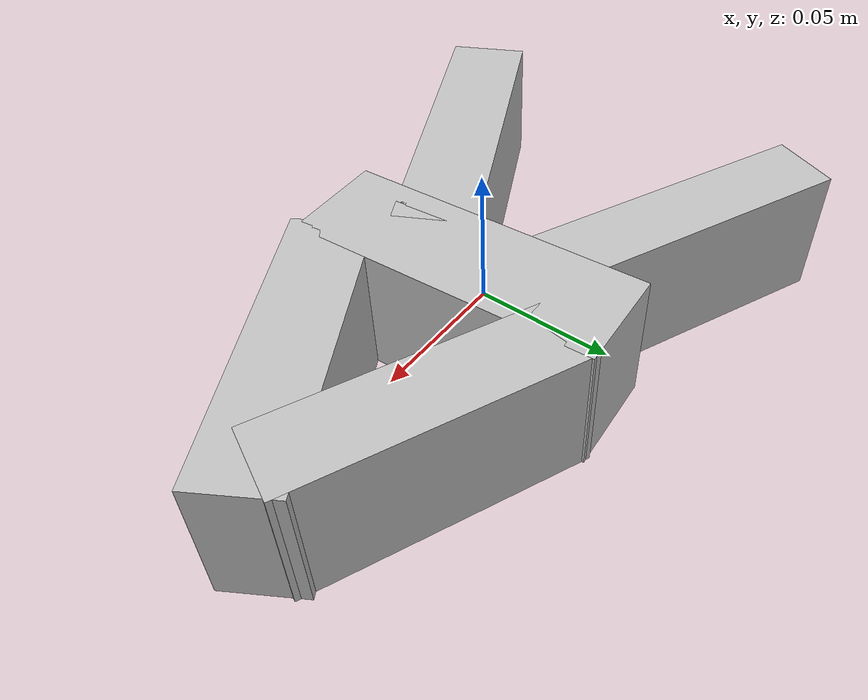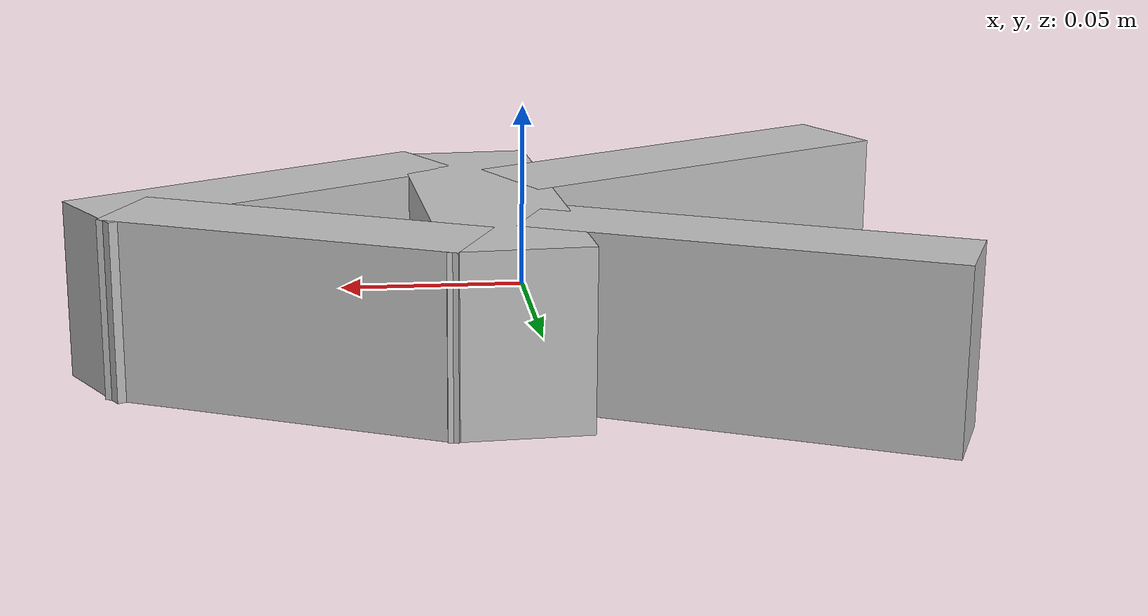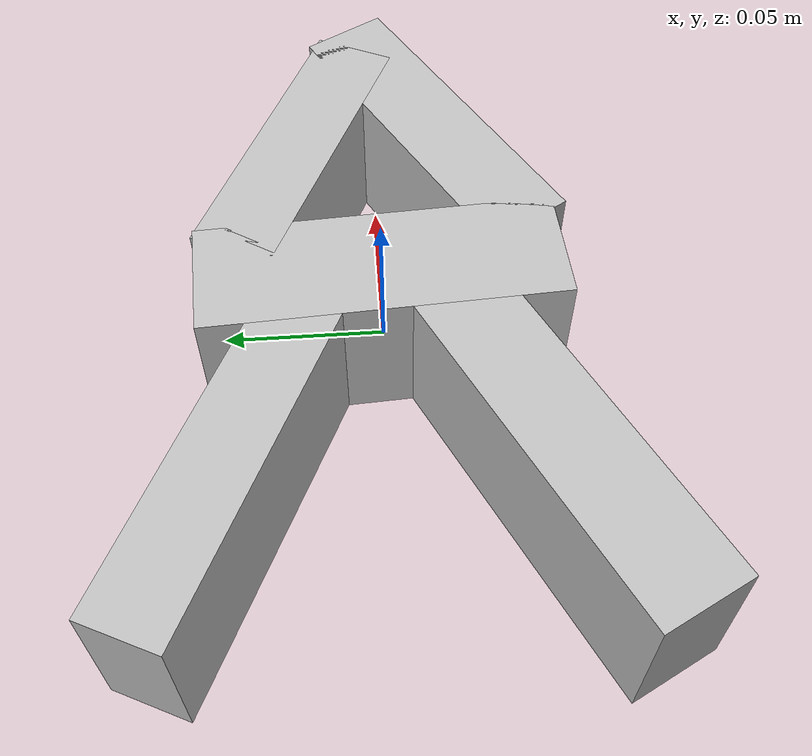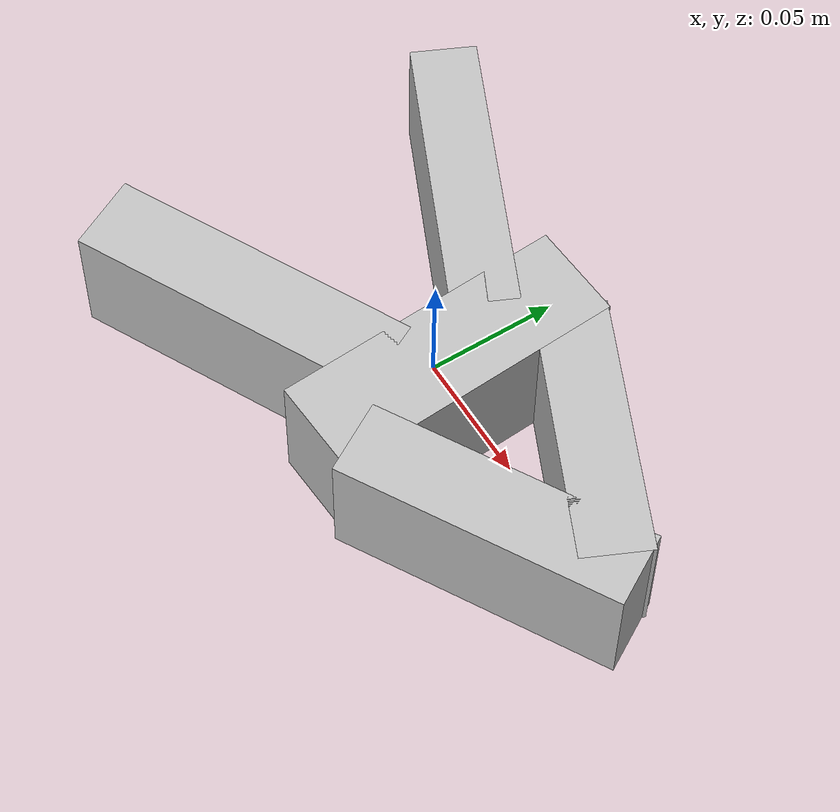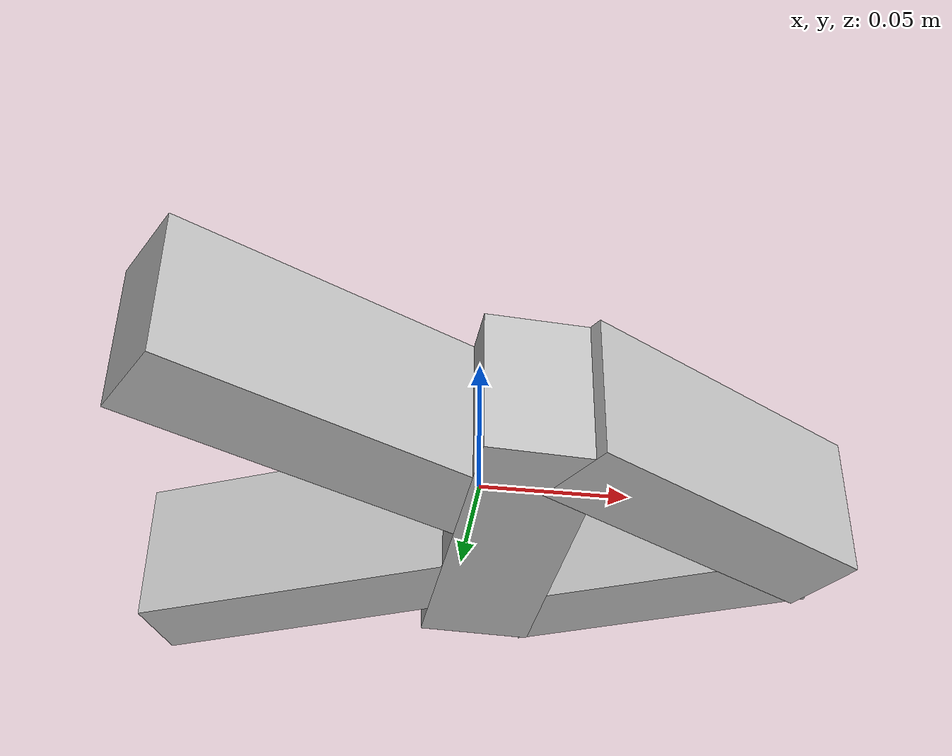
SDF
<?xml version="1.0"?>
<sdf version="1.7">
  <model name="clamp">
    <link name="clamp">
      <inertial>
        <pose>0.004967 -0.001973 0.000286 0 0 0</pose>
        <mass>0.05</mass>
        <inertia>
          <ixx>8.63660033e-05</ixx>
          <iyy>0.000177223438</iyy>
          <izz>0.000243037747</izz>
          <ixy>-7.59200133e-06</ixy>
          <ixz>-7.10284107e-08</ixz>
          <iyz>2.82186102e-08</iyz>
        </inertia>
      </inertial>
      <visual name="box_0">
        <pose>0.009180 0.000040 0.000286 0 0 -1.510800</pose>
        <geometry>
          <box><size>0.114000 0.038000 0.049651</size></box>
        </geometry>
        <material>
          <diffuse>0.75 0.75 0.75 1</diffuse>
        </material>
      </visual>
      <collision name="box_0_volume">
        <pose>0.009180 0.000040 0.000286 0 0 -1.510800</pose>
        <geometry>
          <box><size>0.114000 0.038000 0.049651</size></box>
        </geometry>
        <drake:proximity_properties>
          <drake:compliant_hydroelastic/>
          <drake:hydroelastic_modulus> 3.0e7 </drake:hydroelastic_modulus>
          <drake:mesh_resolution_hint> 0.02 </drake:mesh_resolution_hint>
          <drake:hunt_crossley_dissipation>10</drake:hunt_crossley_dissipation>
          <drake:mu_dynamic>0.3</drake:mu_dynamic>
        </drake:proximity_properties>
      </collision>
      <visual name="box_1">
        <pose>-0.052680 -0.047740 0.000286 0 0 -1.098000</pose>
        <geometry>
          <box><size>0.030000 0.122000 0.049651</size></box>
        </geometry>
        <material>
          <diffuse>0.75 0.75 0.75 1</diffuse>
        </material>
      </visual>
      <collision name="box_1_volume">
        <pose>-0.052680 -0.047740 0.000286 0 0 -1.098000</pose>
        <geometry>
          <box><size>0.030000 0.122000 0.049651</size></box>
        </geometry>
        <drake:proximity_properties>
          <drake:compliant_hydroelastic/>
          <drake:hydroelastic_modulus> 3.0e7 </drake:hydroelastic_modulus>
          <drake:mesh_resolution_hint> 0.02 </drake:mesh_resolution_hint>
          <drake:hunt_crossley_dissipation>10</drake:hunt_crossley_dissipation>
          <drake:mu_dynamic>0.3</drake:mu_dynamic>
        </drake:proximity_properties>
      </collision>
      <visual name="box_2">
        <pose>0.069790 -0.019870 0.000286 0 0 0.523600</pose>
        <geometry>
          <box><size>0.110000 0.029200 0.049651</size></box>
        </geometry>
        <material>
          <diffuse>0.75 0.75 0.75 1</diffuse>
        </material>
      </visual>
      <collision name="box_2_volume">
        <pose>0.069790 -0.019870 0.000286 0 0 0.523600</pose>
        <geometry>
          <box><size>0.110000 0.029200 0.049651</size></box>
        </geometry>
        <drake:proximity_properties>
          <drake:compliant_hydroelastic/>
          <drake:hydroelastic_modulus> 3.0e7 </drake:hydroelastic_modulus>
          <drake:mesh_resolution_hint> 0.02 </drake:mesh_resolution_hint>
          <drake:hunt_crossley_dissipation>10</drake:hunt_crossley_dissipation>
          <drake:mu_dynamic>0.3</drake:mu_dynamic>
        </drake:proximity_properties>
      </collision>
      <visual name="box_3">
        <pose>-0.053000 0.046070 0.000286 0 0 -0.434700</pose>
        <geometry>
          <box><size>0.116000 0.025500 0.049651</size></box>
        </geometry>
        <material>
          <diffuse>0.75 0.75 0.75 1</diffuse>
        </material>
      </visual>
      <collision name="box_3_volume">
        <pose>-0.053000 0.046070 0.000286 0 0 -0.434700</pose>
        <geometry>
          <box><size>0.116000 0.025500 0.049651</size></box>
        </geometry>
        <drake:proximity_properties>
          <drake:compliant_hydroelastic/>
          <drake:hydroelastic_modulus> 3.0e7 </drake:hydroelastic_modulus>
          <drake:mesh_resolution_hint> 0.02 </drake:mesh_resolution_hint>
          <drake:hunt_crossley_dissipation>10</drake:hunt_crossley_dissipation>
          <drake:mu_dynamic>0.3</drake:mu_dynamic>
        </drake:proximity_properties>
      </collision>
      <visual name="box_4">
        <pose>0.062170 0.025220 0.000286 0 0 1.138900</pose>
        <geometry>
          <box><size>0.027000 0.101000 0.049651</size></box>
        </geometry>
        <material>
          <diffuse>0.75 0.75 0.75 1</diffuse>
        </material>
      </visual>
      <collision name="box_4_volume">
        <pose>0.062170 0.025220 0.000286 0 0 1.138900</pose>
        <geometry>
          <box><size>0.027000 0.101000 0.049651</size></box>
        </geometry>
        <drake:proximity_properties>
          <drake:compliant_hydroelastic/>
          <drake:hydroelastic_modulus> 3.0e7 </drake:hydroelastic_modulus>
          <drake:mesh_resolution_hint> 0.02 </drake:mesh_resolution_hint>
          <drake:hunt_crossley_dissipation>10</drake:hunt_crossley_dissipation>
          <drake:mu_dynamic>0.3</drake:mu_dynamic>
        </drake:proximity_properties>
      </collision>
    </link>
  </model>
</sdf>
